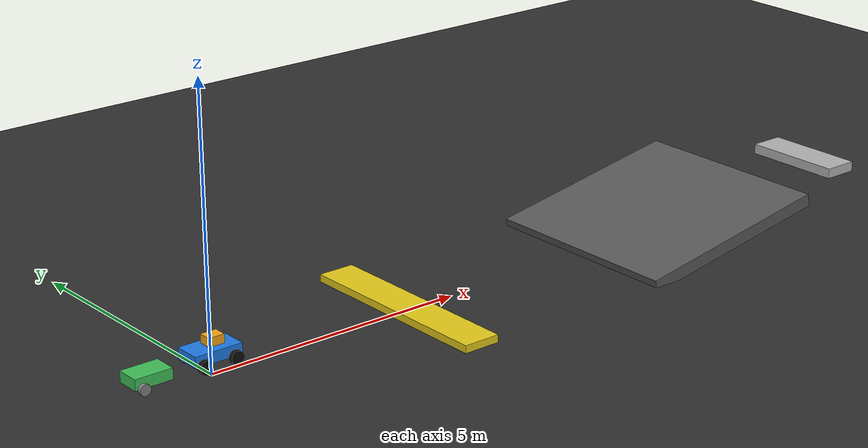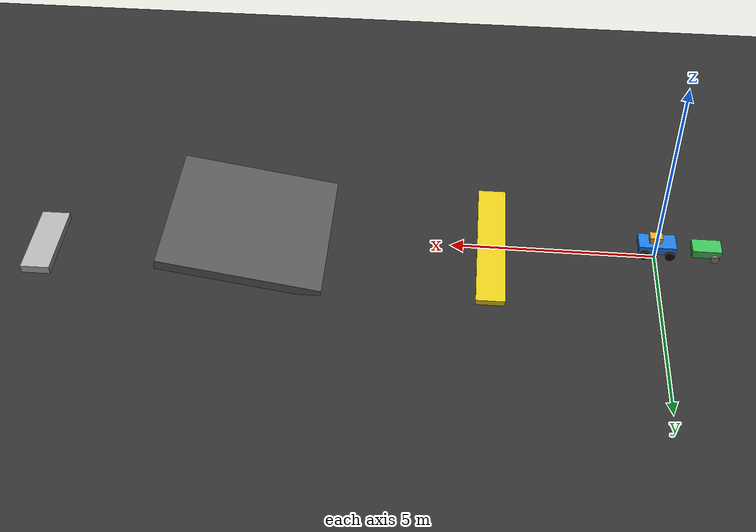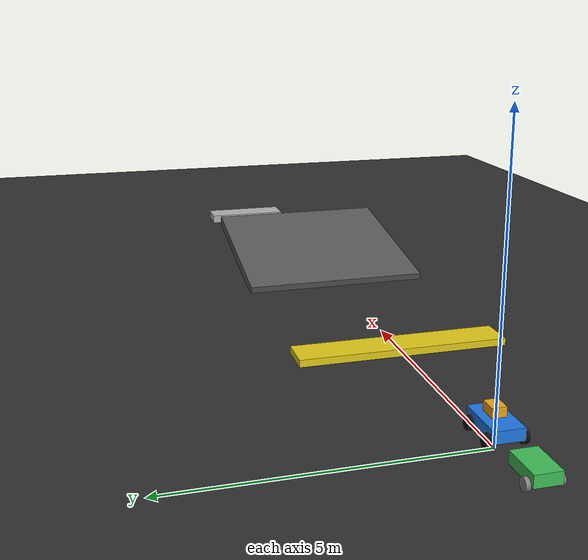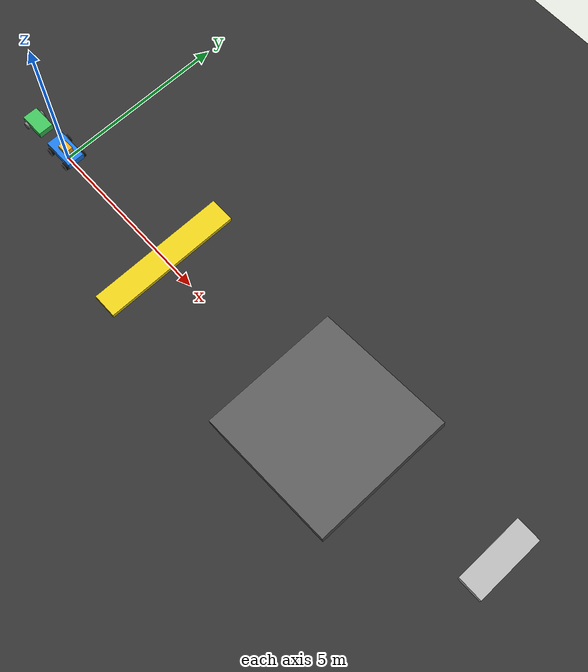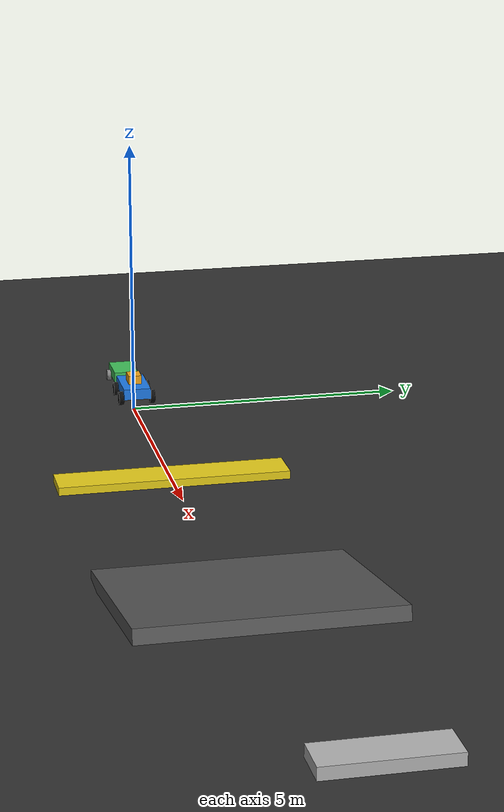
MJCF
<mujoco model="vehicle_dynamics_viewer">
  <compiler angle="degree"/>
  <option timestep="0.005" gravity="0 0 -9.81" integrator="RK4"/>

  <asset>
    <texture name="ground_tex" type="2d" builtin="checker"
             rgb1=".14 .14 .14" rgb2=".24 .24 .24" width="512" height="512"/>
    <material name="ground" texture="ground_tex" texrepeat="16 16"/>
    <material name="body" rgba=".12 .48 .90 1"/>
    <material name="wheel" rgba=".05 .05 .05 1"/>
    <material name="payload" rgba=".95 .65 .10 1"/>
    <material name="trailer" rgba=".25 .75 .35 1"/>
  </asset>

  <worldbody>
    <light name="sun" pos="0 0 8" dir="0 0 -1"/>
    <geom name="floor" type="plane" size="30 20 .1" material="ground"/>

    <camera name="overview" pos="10 -14 9" xyaxes=".82 .57 0 -.36 .52 .78"/>
    <camera name="side_test" pos="2 -10 3" xyaxes="1 0 0 0 .94 .34"/>
    <camera name="follow" mode="trackcom" target="chassis" pos="0 -5 2.5"/>

    <geom name="speed_bump" type="box" pos="4 0 .07" size=".35 2 .07" rgba=".9 .8 .1 1"/>
    <geom name="ramp" type="box" pos="10 0 .35" size="2 2 .12" euler="0 -10 0" rgba=".35 .35 .35 1"/>
    <geom name="curb" type="box" pos="15 .8 .10" size=".35 1 .10" rgba=".7 .7 .7 1"/>

    <body name="chassis" pos="0 0 .42">
      <freejoint/>
      <geom name="chassis_geom" type="box" size=".45 .25 .10" mass="6.0" material="body"/>
      <site name="imu_site" pos="0 0 .12" size=".03" rgba="1 1 0 1"/>

      <body name="payload" pos=".05 0 .20">
        <joint name="payload_x" type="slide" axis="1 0 0" range="-.20 .20" damping="2"/>
        <joint name="payload_y" type="slide" axis="0 1 0" range="-.15 .15" damping="2"/>
        <geom name="payload_geom" type="box" size=".15 .12 .08" mass="1.0" material="payload"/>
      </body>

      <body name="front_left_hub" pos=".30 .29 -.10">
        <joint name="fl_suspension" type="slide" axis="0 0 1" range="-.08 .08" stiffness="800" damping="35"/>
        <body name="front_left_wheel">
          <joint name="fl_wheel_joint" type="hinge" axis="0 1 0" damping=".03"/>
          <geom type="cylinder" size=".12 .045" euler="90 0 0" mass=".45" material="wheel"/>
        </body>
      </body>

      <body name="front_right_hub" pos=".30 -.29 -.10">
        <joint name="fr_suspension" type="slide" axis="0 0 1" range="-.08 .08" stiffness="800" damping="35"/>
        <body name="front_right_wheel">
          <joint name="fr_wheel_joint" type="hinge" axis="0 1 0" damping=".03"/>
          <geom type="cylinder" size=".12 .045" euler="90 0 0" mass=".45" material="wheel"/>
        </body>
      </body>

      <body name="rear_left_hub" pos="-.30 .29 -.10">
        <joint name="rl_suspension" type="slide" axis="0 0 1" range="-.08 .08" stiffness="900" damping="40"/>
        <body name="rear_left_wheel">
          <joint name="rl_wheel_joint" type="hinge" axis="0 1 0" damping=".03"/>
          <geom type="cylinder" size=".12 .045" euler="90 0 0" mass=".45" material="wheel"/>
        </body>
      </body>

      <body name="rear_right_hub" pos="-.30 -.29 -.10">
        <joint name="rr_suspension" type="slide" axis="0 0 1" range="-.08 .08" stiffness="900" damping="40"/>
        <body name="rear_right_wheel">
          <joint name="rr_wheel_joint" type="hinge" axis="0 1 0" damping=".03"/>
          <geom type="cylinder" size=".12 .045" euler="90 0 0" mass=".45" material="wheel"/>
        </body>
      </body>
    </body>

    <body name="trailer" pos="-1.2 0 .35">
      <freejoint/>
      <geom name="trailer_body" type="box" size=".35 .22 .10" mass="2.0" material="trailer"/>
      <body pos="-.2 .25 -.1"><joint name="trailer_left_joint" type="hinge" axis="0 1 0"/><geom type="cylinder" size=".10 .04" euler="90 0 0" mass=".25"/></body>
      <body pos="-.2 -.25 -.1"><joint name="trailer_right_joint" type="hinge" axis="0 1 0"/><geom type="cylinder" size=".10 .04" euler="90 0 0" mass=".25"/></body>
    </body>

    <equality>
      <connect body1="chassis" body2="trailer" anchor="-.48 0 .34"/>
    </equality>
  </worldbody>

  <actuator>
    <velocity name="fl_motor" joint="fl_wheel_joint" kv="3" ctrlrange="-30 30"/>
    <velocity name="fr_motor" joint="fr_wheel_joint" kv="3" ctrlrange="-30 30"/>
    <velocity name="rl_motor" joint="rl_wheel_joint" kv="3" ctrlrange="-30 30"/>
    <velocity name="rr_motor" joint="rr_wheel_joint" kv="3" ctrlrange="-30 30"/>
  </actuator>

  <sensor>
    <framepos name="chassis_position" objtype="body" objname="chassis"/>
    <framequat name="chassis_orientation" objtype="body" objname="chassis"/>
    <accelerometer name="accel" site="imu_site"/>
    <gyro name="gyro" site="imu_site"/>
    <jointpos name="fl_suspension_pos" joint="fl_suspension"/>
    <jointpos name="fr_suspension_pos" joint="fr_suspension"/>
    <jointpos name="rl_suspension_pos" joint="rl_suspension"/>
    <jointpos name="rr_suspension_pos" joint="rr_suspension"/>
  </sensor>
</mujoco>
